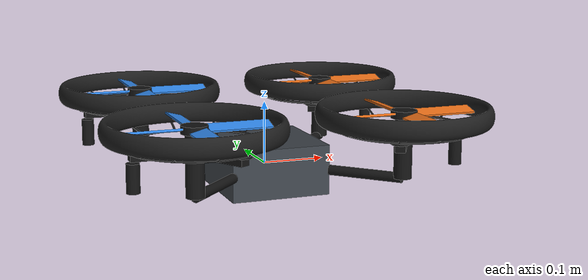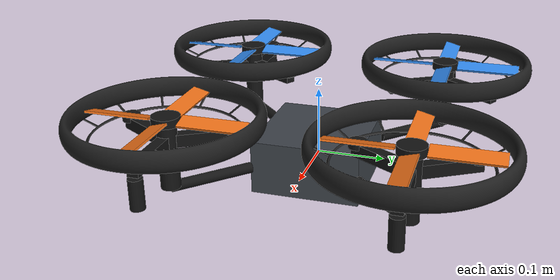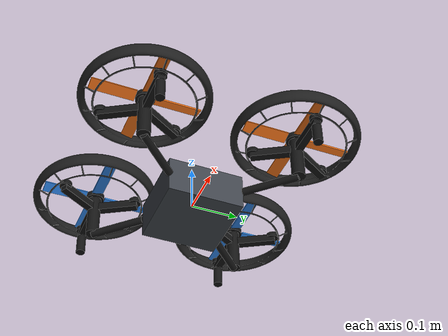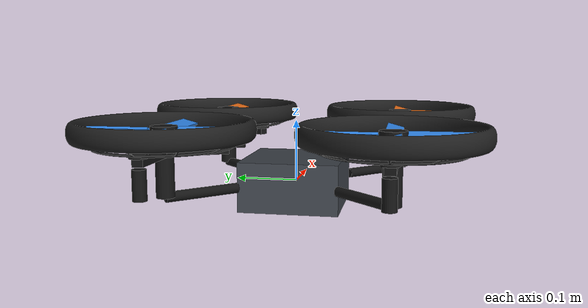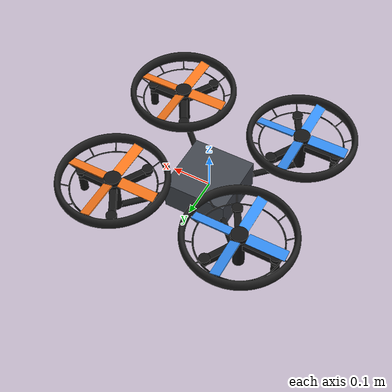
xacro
<?xml version="1.0"?>
<robot name="ringquad" xmlns:xacro="http://www.ros.org/wiki/xacro">

  <xacro:arg name="tread" default="rubber"/>
  <xacro:arg name="drivetrain" default="separate"/>
  <xacro:property name="separate_drive" value="${'$(arg drivetrain)' == 'separate'}"/>
  <xacro:arg name="steering" default="front"/>
  <xacro:arg name="self_collision" default="true"/>
  <xacro:arg name="tread_collision" default="crowned"/>
  <gazebo><self_collide>$(arg self_collision)</self_collide></gazebo>

  <xacro:arg name="fold_ground_deg" default="90"/>
  <xacro:arg name="lock_break_torque" default="8.0"/>
  <xacro:arg name="servo_torque" default="1.0"/>
  <xacro:arg name="servo_speed" default="1.5"/>
  <xacro:arg name="friction_scale" default="1.0"/>
  <xacro:arg name="knuckle_mass" default="0.04"/>
  <xacro:arg name="ring_offset" default="0.1"/>
  <xacro:arg name="steering_limit_deg" default="25"/>
  <!-- ===== parameters (metres, kg) ===== -->
  <xacro:property name="body_l" value="0.16"/>
  <xacro:property name="body_w" value="0.16"/>
  <xacro:property name="body_h" value="0.08"/>
  <xacro:property name="body_m" value="${1.102 if separate_drive else 1.0}"/>

  <xacro:property name="arm_len" value="0.12"/>      <!-- hinge to ring centre -->
  <xacro:property name="arm_r" value="0.008"/>
  <xacro:property name="arm_m" value="${0.28 if separate_drive else 0.11}"/>        <!-- arm + motor -->
  <xacro:property name="ring_offset" value="$(arg ring_offset)"/> <!-- ring plane offset along motor axis -->

  <xacro:property name="ring_r_out" value="0.135"/>
  <xacro:property name="ring_r_in" value="0.12"/>
  <xacro:property name="ring_w" value="0.03"/>
  <xacro:property name="ring_m" value="${.072 if separate_drive else .06}"/>
  <xacro:property name="ring_segments" value="24"/>
  <xacro:property name="blade_pitch" value="${radians(15)}"/>

  <xacro:property name="fold_max" value="${radians(float('$(arg fold_ground_deg)'))}"/>
  <!-- sideways tread friction per axle. Rubber 0.6 when all four rings must scrub to turn (see
       the tyre friction note); real rubber 1.0 in mixed, where the rear rings never scrub; omni ~0.05 -->
  <xacro:property name="tread" value="$(arg tread)"/>
  <xacro:property name="front_lateral_mu" value="${1.0 if tread == 'rubber' else 0.05}"/>
  <xacro:property name="rear_lateral_mu" value="${1.0 if tread == 'rubber' else (0.05 if tread == 'omni' else 1.0)}"/>

  <!-- realistic motors: see the spin joint and ringquad_control/params.py -->
  <xacro:property name="motor_torque" value="0.33"/>
  <xacro:property name="rim_damping" value="1.79e-4"/>

  <!-- ===== materials ===== -->
  <material name="body_grey"><color rgba="0.25 0.27 0.30 1"/></material>
  <material name="arm_black"><color rgba="0.08 0.08 0.08 1"/></material>
  <material name="tread"><color rgba="0.12 0.12 0.12 1"/></material>
  <material name="blade_front"><color rgba="0.95 0.45 0.10 1"/></material>
  <material name="blade_rear"><color rgba="0.20 0.55 0.95 1"/></material>

  <!-- ===== ring tread: segments around a circle (recursive) ===== -->
  <xacro:macro name="ring_segment" params="i">
    <xacro:if value="${i > 0}">
      <xacro:property name="a" value="${2 * pi * i / ring_segments}"/>
      <visual>
        <origin xyz="${(ring_r_in + ring_r_out) / 2 * cos(a)} ${(ring_r_in + ring_r_out) / 2 * sin(a)} 0"
                rpy="0 0 ${a}"/>
        <geometry>
          <box size="${ring_r_out - ring_r_in} ${2 * pi * ring_r_out / ring_segments * 1.05} ${ring_w}"/>
        </geometry>
        <material name="tread"/>
      </visual>
      <xacro:ring_segment i="${i - 1}"/>
    </xacro:if>
  </xacro:macro>

  <xacro:macro name="prop_visuals">
      <!-- hub -->
      <visual>
        <geometry><cylinder radius="0.02" length="0.012"/></geometry>
        <material name="arm_black"/>
      </visual>
      <!-- four pitched blades (spokes) from hub to rim -->
      <xacro:property name="blade_len" value="${(.115 if separate_drive else ring_r_in) - 0.02}"/>
      <xacro:property name="blade_mid" value="${0.02 + blade_len / 2}"/>
      <visual>
        <origin xyz="${blade_mid} 0 0" rpy="${blade_pitch} 0 0"/>
        <geometry><box size="${blade_len} 0.025 0.003"/></geometry>
        <material name="${blade_mat}"/>
      </visual>
      <visual>
        <origin xyz="0 ${blade_mid} 0" rpy="${blade_pitch} 0 ${pi / 2}"/>
        <geometry><box size="${blade_len} 0.025 0.003"/></geometry>
        <material name="${blade_mat}"/>
      </visual>
      <visual>
        <origin xyz="${-blade_mid} 0 0" rpy="${blade_pitch} 0 ${pi}"/>
        <geometry><box size="${blade_len} 0.025 0.003"/></geometry>
        <material name="${blade_mat}"/>
      </visual>
      <visual>
        <origin xyz="0 ${-blade_mid} 0" rpy="${blade_pitch} 0 ${-pi / 2}"/>
        <geometry><box size="${blade_len} 0.025 0.003"/></geometry>
        <material name="${blade_mat}"/>
      </visual>
  </xacro:macro>

  <!-- Wheel supported by three rollers on a stationary rear carrier; no spokes cross the propeller plane. -->
  <xacro:macro name="carrier_parts" params="cx cy cz base_angle:=0">
    <xacro:if value="${separate_drive}">
      <visual><origin xyz="${cx+.090*cos(base_angle)} ${cy+.090*sin(base_angle)} ${cz-.0636}"/>
        <geometry><cylinder radius=".010" length=".0432"/></geometry><material name="arm_black"/></visual>
      <collision><origin xyz="${cx+.090*cos(base_angle)} ${cy+.090*sin(base_angle)} ${cz-.0636}"/>
        <geometry><cylinder radius=".010" length=".0432"/></geometry></collision>
      <xacro:carrier_spoke a="${base_angle}" cx="${cx}" cy="${cy}" cz="${cz}"/>
      <xacro:carrier_spoke a="${base_angle+2*pi/3}" cx="${cx}" cy="${cy}" cz="${cz}"/>
      <xacro:carrier_spoke a="${base_angle+4*pi/3}" cx="${cx}" cy="${cy}" cz="${cz}"/>
    </xacro:if>
  </xacro:macro>
  <xacro:macro name="carrier_spoke" params="a cx cy cz">
    <visual><origin xyz="${cx+.0475*cos(a)} ${cy+.0475*sin(a)} ${cz-.030}" rpy="0 0 ${a}"/>
      <geometry><box size=".095 .016 .018"/></geometry><material name="arm_black"/></visual>
    <collision><origin xyz="${cx+.0475*cos(a)} ${cy+.0475*sin(a)} ${cz-.030}" rpy="0 0 ${a}"/>
      <geometry><box size=".095 .016 .018"/></geometry></collision>
    <visual><origin xyz="${cx+.090*cos(a)} ${cy+.090*sin(a)} ${cz-.0225}"/>
      <geometry><cylinder radius=".013" length=".010"/></geometry><material name="arm_black"/></visual>
  </xacro:macro>

  <xacro:macro name="rear_contacts" params="i count folder prefix">
    <xacro:if value="${i &lt; count}">
      <collision><geometry><mesh filename="package://ringquad_description/meshes/${folder}/${prefix}_${i}.stl"/></geometry></collision>
      <xacro:rear_contacts i="${i+1}" count="${count}" folder="${folder}" prefix="${prefix}"/>
    </xacro:if>
  </xacro:macro>

  <!-- ===== one arm + ring ===== -->
  <xacro:macro name="corner" params="name x y yaw axis_x blade_mat lateral_mu">
    <joint name="hinge_${name}" type="revolute">
      <parent link="chassis"/>
      <child link="arm_${name}"/>
      <origin xyz="${x} ${y} 0" rpy="0 0 0"/>
      <axis xyz="${axis_x} 0 0"/>
      <limit lower="0" upper="${fold_max}" effort="10.0" velocity="2.0"/>
      <dynamics damping="0.05" friction="0.01"/>
    </joint>

    <link name="arm_${name}">
      <visual>
        <origin xyz="${arm_len / 2 * cos(yaw)} ${arm_len / 2 * sin(yaw)} 0" rpy="0 ${pi / 2} ${yaw}"/>
        <geometry><cylinder radius="${arm_r}" length="${arm_len}"/></geometry>
        <material name="arm_black"/>
      </visual>
      <xacro:unless value="${'$(arg steering)' == 'front' and name in ['fl','fr']}">
        <xacro:carrier_parts cx="${arm_len*cos(yaw)}" cy="${arm_len*sin(yaw)}" cz="${ring_offset}" base_angle="${pi if name in ['rl','rr'] else 0}"/>
      </xacro:unless>
      <!-- motor and drive package represented at the arm tip -->
      <visual>
        <origin xyz="${arm_len * cos(yaw)} ${arm_len * sin(yaw)} ${ring_offset / 2}"/>
        <geometry><cylinder radius="0.014" length="${ring_offset}"/></geometry>
        <material name="arm_black"/>
      </visual>
      <inertial>
        <origin xyz="${0.75 * arm_len * cos(yaw)} ${0.75 * arm_len * sin(yaw)} 0"/>
        <mass value="${arm_m}"/>
        <inertia ixx="1.5e-4" iyy="1.5e-4" izz="2.5e-4" ixy="0" ixz="0" iyz="0"/>
      </inertial>
    </link>

    <xacro:property name="steered" value="${'$(arg steering)' == 'front' and name in ['fl', 'fr']}"/>
    <xacro:if value="${steered}">
      <joint name="steer_${name}" type="revolute">
        <parent link="arm_${name}"/><child link="knuckle_${name}"/>
        <origin xyz="${arm_len * cos(yaw)} ${arm_len * sin(yaw)} ${ring_offset}"/>
        <!-- Vertical at the 90-degree ground stop, zero angle locked for flight. -->
        <axis xyz="0 ${axis_x} 0"/>
        <limit lower="${-radians(float('$(arg steering_limit_deg)')) / sin(radians(float('$(arg fold_ground_deg)'))) - .005}" upper="${radians(float('$(arg steering_limit_deg)')) / sin(radians(float('$(arg fold_ground_deg)'))) + .005}" effort="${float('$(arg servo_torque)')+float('$(arg lock_break_torque)')}" velocity="$(arg servo_speed)"/>
        <dynamics damping="0.05"/>
      </joint>
      <link name="knuckle_${name}">
        <xacro:carrier_parts cx="0" cy="0" cz="0"/>
        <inertial><mass value="$(arg knuckle_mass)"/><inertia ixx="1e-5" iyy="1e-5" izz="1e-5" ixy="0" ixz="0" iyz="0"/></inertial>
      </link>

    </xacro:if>
    <joint name="${'wheel_' if separate_drive else 'spin_'}${name}" type="continuous">
      <xacro:if value="${steered}"><parent link="knuckle_${name}"/><origin xyz="0 0 0"/></xacro:if>
      <xacro:unless value="${steered}"><parent link="arm_${name}"/><origin xyz="${arm_len * cos(yaw)} ${arm_len * sin(yaw)} ${ring_offset}"/></xacro:unless>
      <child link="ring_${name}"/>
      <axis xyz="0 0 1"/>
      <limit effort="${motor_torque}" velocity="${5.6 if separate_drive else 1000}"/>
      <dynamics damping="${0.002 if separate_drive else rim_damping}"/>
    </joint>

    <link name="ring_${name}">
      <xacro:if value="${'$(arg tread_collision)' == 'crowned'}"><visual><geometry><mesh filename="package://ringquad_description/meshes/crowned_rim.stl"/></geometry><material name="tread"/></visual></xacro:if>
      <xacro:unless value="${'$(arg tread_collision)' == 'crowned'}"><xacro:ring_segment i="${ring_segments}"/></xacro:unless>
      <xacro:unless value="${separate_drive}"><xacro:prop_visuals/></xacro:unless>
      <!-- Convex rounded tread contact; outer dimensions match the ring. -->
      <collision><geometry>
        <xacro:if value="${'$(arg tread_collision)' == 'cylinder'}"><cylinder radius="${ring_r_out}" length="${ring_w}"/></xacro:if>
        <xacro:if value="${'$(arg tread_collision)' == 'crowned'}"><mesh filename="package://ringquad_description/meshes/crowned_tread_hull.stl"/></xacro:if>
        <xacro:if value="${'$(arg tread_collision)' == 'rounded'}"><mesh filename="package://ringquad_description/meshes/rounded_tread.stl"/></xacro:if>
      </geometry></collision>
      <xacro:if value="${'$(arg tread_collision)' == 'crowned'}">
        <xacro:rear_contacts i="0" count="16" folder="rear_race_segments" prefix="race"/>
        <xacro:rear_contacts i="0" count="12" folder="rear_tab_segments" prefix="tab"/>
      </xacro:if>
      <inertial>
        <mass value="${ring_m}"/>
        <xacro:property name="rim_ixx" value="${ring_m * (.1275**2/2 + 3*.0075**2/8 + .015**2/4) if '$(arg tread_collision)' == 'crowned' else ring_m / 12 * (3 * (ring_r_in**2 + ring_r_out**2) + ring_w**2)}"/>
        <xacro:property name="rim_izz" value="${ring_m * (.1275**2 + 3*.0075**2/4) if '$(arg tread_collision)' == 'crowned' else ring_m / 2 * (ring_r_in**2 + ring_r_out**2)}"/>
        <!-- annulus: Izz = m/2 (ri^2 + ro^2), Ixx = m/12 (3 (ri^2 + ro^2) + w^2) -->
        <inertia ixx="${rim_ixx}"
                 iyy="${rim_ixx}"
                 izz="${rim_izz}"
                 ixy="0" ixz="0" iyz="0"/>
      </inertial>
    </link>

    <xacro:if value="${separate_drive}">
      <joint name="spin_${name}" type="continuous">
        <xacro:if value="${steered}"><parent link="knuckle_${name}"/><origin xyz="0 0 0"/></xacro:if>
        <xacro:unless value="${steered}"><parent link="arm_${name}"/><origin xyz="${arm_len*cos(yaw)} ${arm_len*sin(yaw)} ${ring_offset}"/></xacro:unless>
        <child link="prop_${name}"/><axis xyz="0 0 1"/>
        <limit effort="${motor_torque}" velocity="1090"/>
      </joint>
      <link name="prop_${name}">
        <xacro:prop_visuals/>
        <inertial><mass value="0.015"/><inertia ixx="5.5e-5" iyy="5.5e-5" izz="1.1e-4" ixy="0" ixz="0" iyz="0"/></inertial>
      </link>
    </xacro:if>

    <gazebo reference="ring_${name}">
      <mu1>${lateral_mu * float('$(arg friction_scale)')}</mu1>
      <mu2>$(arg friction_scale)</mu2>
      <fdir1>0 0 1</fdir1>
    </gazebo>
  </xacro:macro>

  <!-- ===== body ===== -->
  <link name="base_link"/>

  <joint name="base_to_chassis" type="fixed">
    <parent link="base_link"/>
    <child link="chassis"/>
  </joint>

  <link name="chassis">
    <visual>
      <geometry><box size="${body_l} ${body_w} ${body_h}"/></geometry>
      <material name="body_grey"/>
    </visual>
    <collision>
      <geometry><box size="${body_l} ${body_w} ${body_h}"/></geometry>
    </collision>
    <inertial>
      <mass value="${body_m}"/>
      <inertia ixx="${body_m / 12 * (body_w**2 + body_h**2)}"
               iyy="${body_m / 12 * (body_l**2 + body_h**2)}"
               izz="${body_m / 12 * (body_l**2 + body_w**2)}"
               ixy="0" ixz="0" iyz="0"/>
    </inertial>
  </link>

  <!-- orange blades at the front, blue at the rear -->
  <xacro:corner lateral_mu="${front_lateral_mu}" name="fl" x="${body_l / 2}"  y="${body_w / 2}"  yaw="${radians(45)}"   axis_x="-1" blade_mat="blade_front"/>
  <xacro:corner lateral_mu="${front_lateral_mu}" name="fr" x="${body_l / 2}"  y="${-body_w / 2}" yaw="${radians(-45)}"  axis_x="1"  blade_mat="blade_front"/>
  <xacro:corner lateral_mu="${rear_lateral_mu}" name="rl" x="${-body_l / 2}" y="${body_w / 2}"  yaw="${radians(135)}"  axis_x="-1" blade_mat="blade_rear"/>
  <xacro:corner lateral_mu="${rear_lateral_mu}" name="rr" x="${-body_l / 2}" y="${-body_w / 2}" yaw="${radians(-135)}" axis_x="1"  blade_mat="blade_rear"/>

  <gazebo><plugin filename="libringquad_steering_lock.so" name="ringquad::SteeringLock"><servo_torque>$(arg servo_torque)</servo_torque><servo_speed>$(arg servo_speed)</servo_speed><lock_break_torque>$(arg lock_break_torque)</lock_break_torque><joint_limit>${radians(float('$(arg steering_limit_deg)')) / sin(radians(float('$(arg fold_ground_deg)'))) + .005}</joint_limit></plugin></gazebo>
  <!-- ===== Gazebo Harmonic plugins ===== -->
  <gazebo>
    <plugin filename="gz-sim-joint-state-publisher-system" name="gz::sim::systems::JointStatePublisher">
      <topic>/joint_states</topic>
    </plugin>
    <!-- Native pose/velocity odometry is published by the finite actuator system. -->
  </gazebo>

  <gazebo reference="chassis">
    <!-- noise: gyro 0.05 rad/s, accel 0.3 m/s^2 (sensor noise plus typical airframe vibration) -->
    <sensor name="imu" type="imu">
      <always_on>true</always_on>
      <update_rate>250</update_rate>
      <topic>/imu</topic>
      <imu>
        <angular_velocity>
          <x><noise type="gaussian"><mean>0</mean><stddev>0.05</stddev></noise></x>
          <y><noise type="gaussian"><mean>0</mean><stddev>0.05</stddev></noise></y>
          <z><noise type="gaussian"><mean>0</mean><stddev>0.05</stddev></noise></z>
        </angular_velocity>
        <linear_acceleration>
          <x><noise type="gaussian"><mean>0</mean><stddev>0.3</stddev></noise></x>
          <y><noise type="gaussian"><mean>0</mean><stddev>0.3</stddev></noise></y>
          <z><noise type="gaussian"><mean>0</mean><stddev>0.3</stddev></noise></z>
        </linear_acceleration>
      </imu>
    </sensor>
  </gazebo>

  <xacro:macro name="rotor" params="name number direction">
    <gazebo>
      <plugin filename="gz-sim-multicopter-motor-model-system" name="gz::sim::systems::MulticopterMotorModel">
        <robotNamespace>ringquad</robotNamespace>
        <jointName>spin_${name}</jointName>
        <linkName>${'prop_' if separate_drive else 'ring_'}${name}</linkName>
        <turningDirection>${direction}</turningDirection>
        <timeConstantUp>0.0125</timeConstantUp>
        <timeConstantDown>0.025</timeConstantDown>
        <maxRotVelocity>1090.0</maxRotVelocity>
        <motorConstant>${8.4e-6 if separate_drive else 1.56e-5}</motorConstant>
        <momentConstant>0.016</momentConstant>
        <commandSubTopic>motor_speed</commandSubTopic>
        <actuator_number>${number}</actuator_number>
        <rotorDragCoefficient>8.06428e-05</rotorDragCoefficient>
        <rollingMomentCoefficient>1e-06</rollingMomentCoefficient>
        <rotorVelocitySlowdownSim>1</rotorVelocitySlowdownSim>
        <motorType>velocity</motorType>
      </plugin>
    </gazebo>
  </xacro:macro>

  <!-- Finite wheel torque is applied by SteeringLock; coast throughout folding. -->

  <!-- Shared-drive historical model; separate drives use finite propeller torque. -->
  <xacro:unless value="${separate_drive}">
  <xacro:rotor name="fl" number="0" direction="ccw"/>
  <xacro:rotor name="fr" number="1" direction="cw"/>
  <xacro:rotor name="rl" number="2" direction="cw"/>
  <xacro:rotor name="rr" number="3" direction="ccw"/>
  </xacro:unless>
</robot>
